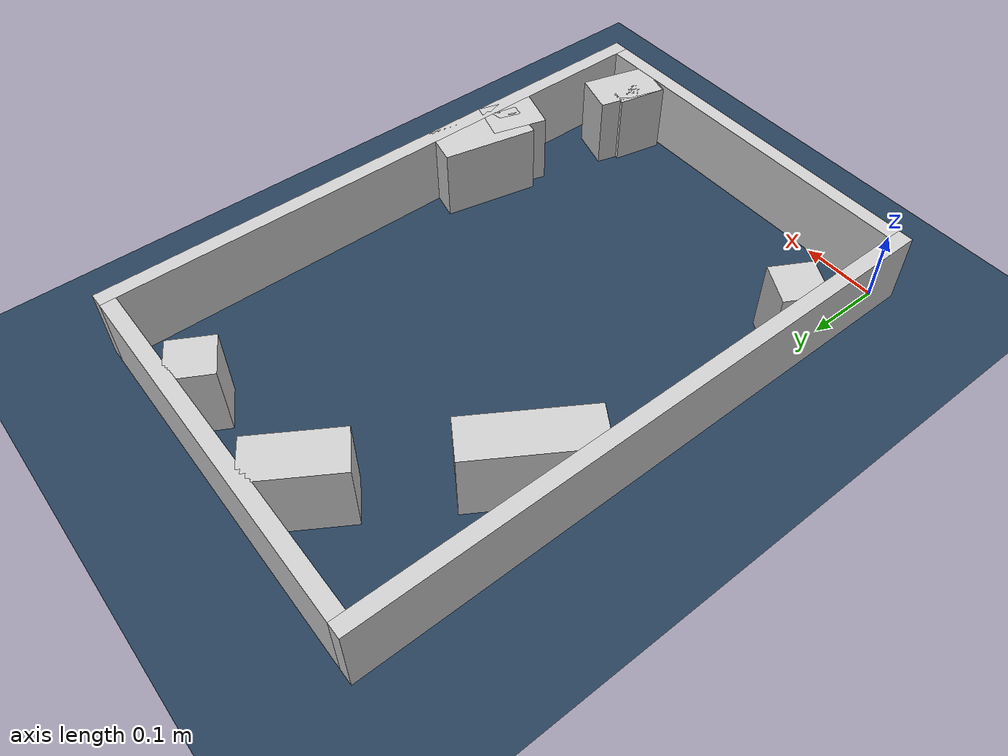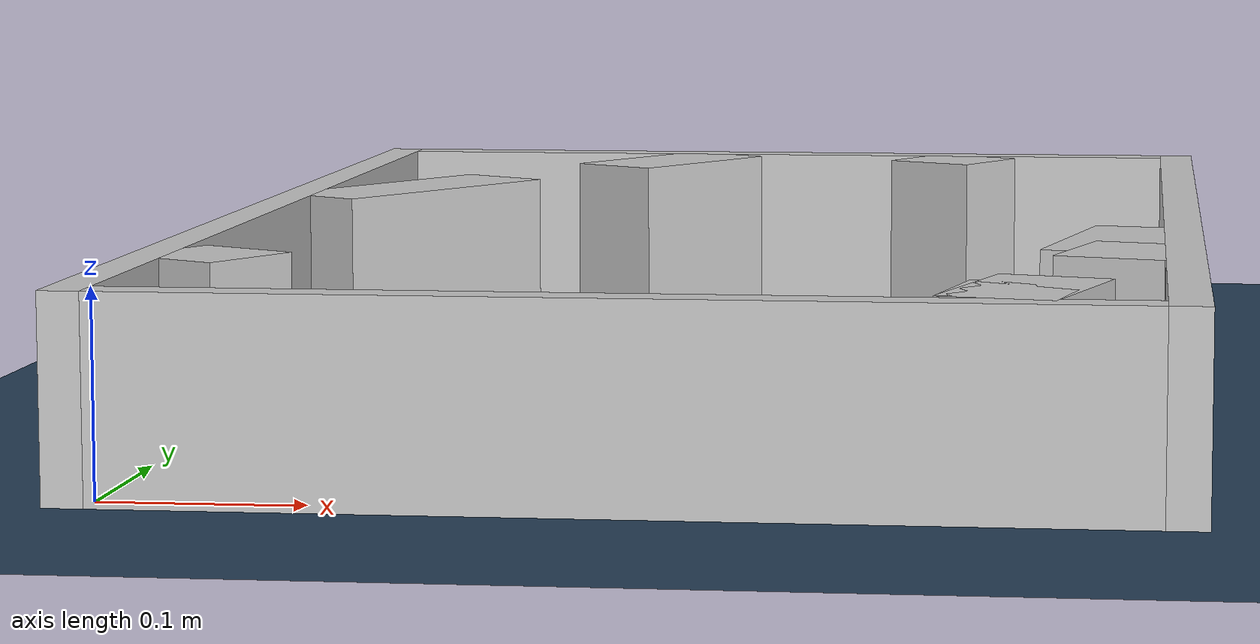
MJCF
<?xml version="1.0" ?>
<mujoco model="generated_real_template">
  <compiler angle="degree"/>
  <option timestep="0.002" integrator="implicitfast" iterations="100" cone="elliptic"/>
  <default>
    <geom density="1"/>
  </default>
  <asset>
    <texture builtin="gradient" height="3072" rgb1="0.3 0.5 0.7" rgb2="0 0 0" type="skybox" width="512"/>
    <texture builtin="checker" height="300" mark="edge" markrgb="0.8 0.8 0.8" name="groundplane" rgb1="0.2 0.3 0.4" rgb2="0.1 0.2 0.3" type="2d" width="300"/>
    <material name="groundplane" reflectance="0.2" texrepeat="5 5" texture="groundplane" texuniform="true"/>
  </asset>
  <worldbody>
    <light dir="0 0 -1" directional="true" pos="0 0 1.5"/>
    <geom name="floor" type="plane" condim="4" friction="0.5 0.005 0.001" material="groundplane" size="0 0 0.05"/>
    <body name="walls">
      <geom name="wall_boundary_left" type="box" condim="4" friction="1.0 0.005 0.0001" rgba="0.8 0.8 0.8 1" pos="-0.010000 0.387500 0.050000" euler="0 0 0.000000" size="0.010000 0.407500 0.050000"/>
      <geom name="wall_boundary_right" type="box" condim="4" friction="1.0 0.005 0.0001" rgba="0.8 0.8 0.8 1" pos="0.500000 0.387500 0.050000" euler="0 0 0.000000" size="0.010000 0.407500 0.050000"/>
      <geom name="wall_boundary_bottom" type="box" condim="4" friction="1.0 0.005 0.0001" rgba="0.8 0.8 0.8 1" pos="0.245000 -0.010000 0.050000" euler="0 0 0.000000" size="0.245000 0.010000 0.050000"/>
      <geom name="wall_boundary_top" type="box" condim="4" friction="1.0 0.005 0.0001" rgba="0.8 0.8 0.8 1" pos="0.245000 0.785000 0.050000" euler="0 0 0.000000" size="0.245000 0.010000 0.050000"/>
      <geom name="wall_inner_1_1" type="box" condim="4" friction="1.0 0.005 0.0001" rgba="0.8 0.8 0.8 1" pos="0.357081 0.749149 0.050000" euler="0 0 -119.044229" size="0.029569 0.028500 0.050000"/>
      <geom name="wall_inner_1_2" type="box" condim="4" friction="1.0 0.005 0.0001" rgba="0.8 0.8 0.8 1" pos="0.019169 0.140647 0.050000" euler="0 0 -119.044229" size="0.029356 0.028500 0.050000"/>
      <geom name="wall_inner_2_1" type="box" condim="4" friction="1.0 0.005 0.0001" rgba="0.8 0.8 0.8 1" pos="0.472335 0.207637 0.050000" euler="0 0 -105.907191" size="0.037417 0.028500 0.050000"/>
      <geom name="wall_inner_2_2" type="box" condim="4" friction="1.0 0.005 0.0001" rgba="0.8 0.8 0.8 1" pos="0.425927 0.044800 0.050000" euler="0 0 -105.907191" size="0.046584 0.028500 0.050000"/>
      <geom name="wall_inner_3_1" type="box" condim="4" friction="1.0 0.005 0.0001" rgba="0.8 0.8 0.8 1" pos="0.420157 0.032930 0.050000" euler="0 0 78.025755" size="0.033662 0.028500 0.050000"/>
      <geom name="wall_inner_3_2" type="box" condim="4" friction="1.0 0.005 0.0001" rgba="0.8 0.8 0.8 1" pos="0.468828 0.262416 0.050000" euler="0 0 78.025755" size="0.064061 0.028500 0.050000"/>
      <geom name="wall_inner_4_1" type="box" condim="4" friction="1.0 0.005 0.0001" rgba="0.8 0.8 0.8 1" pos="0.176358 0.725736 0.050000" euler="0 0 -121.996295" size="0.058089 0.028500 0.050000"/>
      <geom name="wall_inner_4_2" type="box" condim="4" friction="1.0 0.005 0.0001" rgba="0.8 0.8 0.8 1" pos="0.047431 0.519380 0.050000" euler="0 0 -121.996295" size="0.081643 0.028500 0.050000"/>
    </body>
  </worldbody>
</mujoco>
